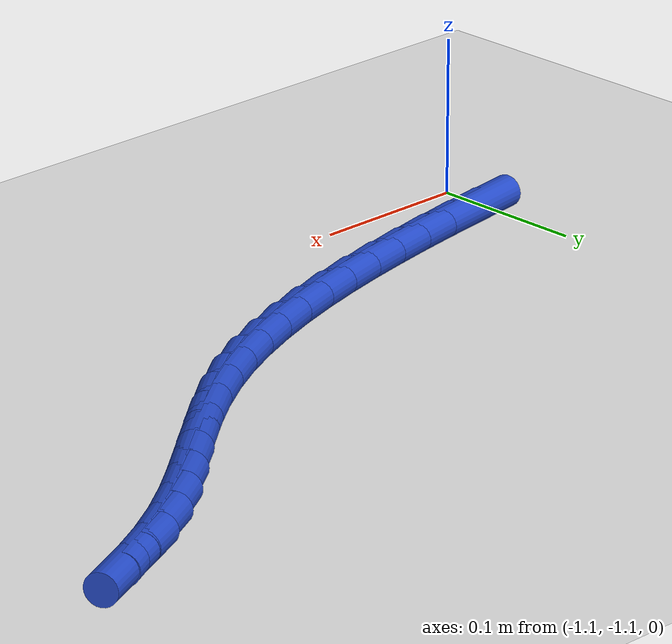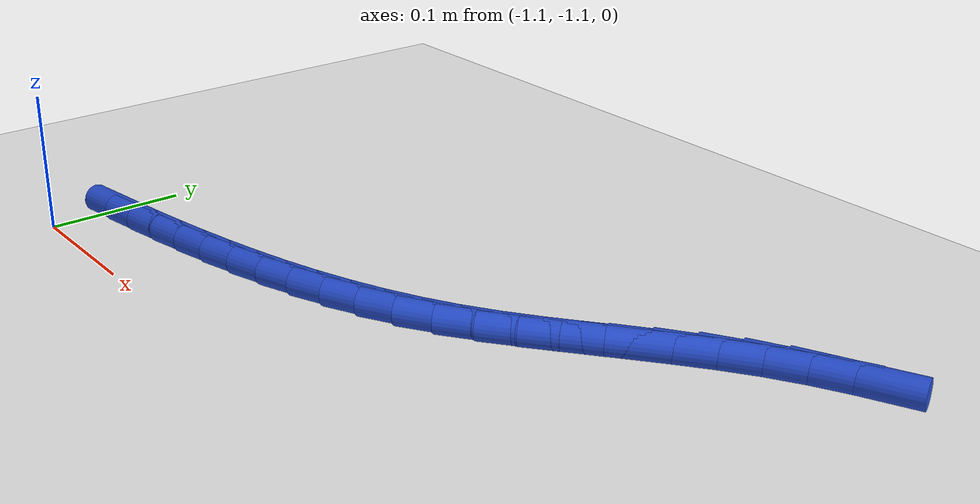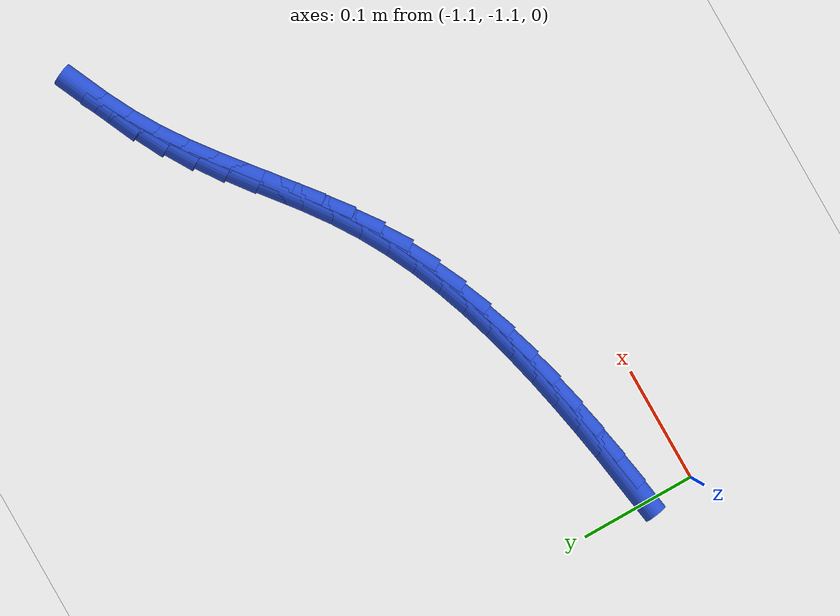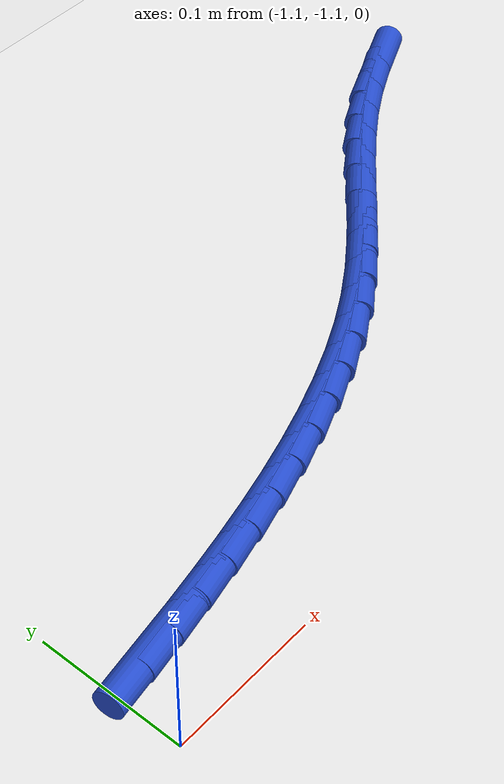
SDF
<sdf version="1.6">
 <world name="default">
  <model name="ground_plane">
   <static>1</static>
   <link name="link">
    <collision name="collision">
     <geometry><plane><normal>0 0 1</normal><size>100 100</size></plane></geometry>
     <surface><friction><ode><mu>100</mu><mu2>50</mu2></ode></friction></surface>
    </collision>
    <visual name="visual">
     <cast_shadows>0</cast_shadows>
     <geometry><plane><normal>0 0 1</normal><size>100 100</size></plane></geometry>
     <material>
      <script><uri>file://media/materials/scripts/gazebo.material</uri><name>Gazebo/WhiteGlow</name></script>
     </material>
    </visual>
   </link>
  </model>
  <model name="line">
   <link name="link_189">
    <pose>-1.0715604395295202 -1.0536346497212339 0.01 0 1.57 0.15486011500513117</pose>
    <collision name="collision">
     <geometry><cylinder><radius>0.01</radius><length>0.08</length></cylinder></geometry>
    </collision>
    <visual name="visual">
     <material>
      <script><name>Gazebo/Blue</name><uri>file://media/materials/scripts/gazebo.material</uri></script>
     </material>
     <geometry><cylinder><radius>0.01</radius><length>0.08</length></cylinder></geometry>
    </visual>
   </link>
   <link name="link_190">
    <pose>-1.0449526670208036 -1.0494809092786128 0.01 0 1.57 0.17544891113534483</pose>
    <collision name="collision">
     <geometry><cylinder><radius>0.01</radius><length>0.08</length></cylinder></geometry>
    </collision>
    <visual name="visual">
     <material>
      <script><name>Gazebo/Blue</name><uri>file://media/materials/scripts/gazebo.material</uri></script>
     </material>
     <geometry><cylinder><radius>0.01</radius><length>0.08</length></cylinder></geometry>
    </visual>
   </link>
   <link name="link_191">
    <pose>-1.018354942798299 -1.0447658881870363 0.01 0 1.57 0.19378828539661466</pose>
    <collision name="collision">
     <geometry><cylinder><radius>0.01</radius><length>0.08</length></cylinder></geometry>
    </collision>
    <visual name="visual">
     <material>
      <script><name>Gazebo/Blue</name><uri>file://media/materials/scripts/gazebo.material</uri></script>
     </material>
     <geometry><cylinder><radius>0.01</radius><length>0.08</length></cylinder></geometry>
    </visual>
   </link>
   <link name="link_192">
    <pose>-0.9917712558513961 -1.0395488097714596 0.01 0 1.57 0.21437530286817308</pose>
    <collision name="collision">
     <geometry><cylinder><radius>0.01</radius><length>0.08</length></cylinder></geometry>
    </collision>
    <visual name="visual">
     <material>
      <script><name>Gazebo/Blue</name><uri>file://media/materials/scripts/gazebo.material</uri></script>
     </material>
     <geometry><cylinder><radius>0.01</radius><length>0.08</length></cylinder></geometry>
    </visual>
   </link>
   <link name="link_193">
    <pose>-0.9652649581636099 -1.0337778370418815 0.01 0 1.57 0.2400023250507006</pose>
    <collision name="collision">
     <geometry><cylinder><radius>0.01</radius><length>0.08</length></cylinder></geometry>
    </collision>
    <visual name="visual">
     <material>
      <script><name>Gazebo/Blue</name><uri>file://media/materials/scripts/gazebo.material</uri></script>
     </material>
     <geometry><cylinder><radius>0.01</radius><length>0.08</length></cylinder></geometry>
    </visual>
   </link>
   <link name="link_194">
    <pose>-0.9389350669867899 -1.0273344080057534 0.01 0 1.57 0.27088059914250473</pose>
    <collision name="collision">
     <geometry><cylinder><radius>0.01</radius><length>0.08</length></cylinder></geometry>
    </collision>
    <visual name="visual">
     <material>
      <script><name>Gazebo/Blue</name><uri>file://media/materials/scripts/gazebo.material</uri></script>
     </material>
     <geometry><cylinder><radius>0.01</radius><length>0.08</length></cylinder></geometry>
    </visual>
   </link>
   <link name="link_195">
    <pose>-0.9128810861415104 -1.0200990503647613 0.01 0 1.57 0.3072146526912078</pose>
    <collision name="collision">
     <geometry><cylinder><radius>0.01</radius><length>0.08</length></cylinder></geometry>
    </collision>
    <visual name="visual">
     <material>
      <script><name>Gazebo/Blue</name><uri>file://media/materials/scripts/gazebo.material</uri></script>
     </material>
     <geometry><cylinder><radius>0.01</radius><length>0.08</length></cylinder></geometry>
    </visual>
   </link>
   <link name="link_196">
    <pose>-0.8872025194483462 -1.0119522918205917 0.01 0 1.57 0.3492148768662125</pose>
    <collision name="collision">
     <geometry><cylinder><radius>0.01</radius><length>0.08</length></cylinder></geometry>
    </collision>
    <visual name="visual">
     <material>
      <script><name>Gazebo/Blue</name><uri>file://media/materials/scripts/gazebo.material</uri></script>
     </material>
     <geometry><cylinder><radius>0.01</radius><length>0.08</length></cylinder></geometry>
    </visual>
   </link>
   <link name="link_197">
    <pose>-0.8619988707278716 -1.00277466007493 0.01 0 1.57 0.3970653486880831</pose>
    <collision name="collision">
     <geometry><cylinder><radius>0.01</radius><length>0.08</length></cylinder></geometry>
    </collision>
    <visual name="visual">
     <material>
      <script><name>Gazebo/Blue</name><uri>file://media/materials/scripts/gazebo.material</uri></script>
     </material>
     <geometry><cylinder><radius>0.01</radius><length>0.08</length></cylinder></geometry>
    </visual>
   </link>
   <link name="link_198">
    <pose>-0.8373696438006609 -0.9924466828294628 0.01 0 1.57 0.45088184842247314</pose>
    <collision name="collision">
     <geometry><cylinder><radius>0.01</radius><length>0.08</length></cylinder></geometry>
    </collision>
    <visual name="visual">
     <material>
      <script><name>Gazebo/Blue</name><uri>file://media/materials/scripts/gazebo.material</uri></script>
     </material>
     <geometry><cylinder><radius>0.01</radius><length>0.08</length></cylinder></geometry>
    </visual>
   </link>
   <link name="link_199">
    <pose>-0.8134143424872887 -0.9808488877858755 0.01 0 1.57 0.5106602788937123</pose>
    <collision name="collision">
     <geometry><cylinder><radius>0.01</radius><length>0.08</length></cylinder></geometry>
    </collision>
    <visual name="visual">
     <material>
      <script><name>Gazebo/Blue</name><uri>file://media/materials/scripts/gazebo.material</uri></script>
     </material>
     <geometry><cylinder><radius>0.01</radius><length>0.08</length></cylinder></geometry>
    </visual>
   </link>
   <link name="link_200">
    <pose>-0.7902324706083295 -0.9678618026458548 0.01 0 1.57 0.5754843797359663</pose>
    <collision name="collision">
     <geometry><cylinder><radius>0.01</radius><length>0.08</length></cylinder></geometry>
    </collision>
    <visual name="visual">
     <material>
      <script><name>Gazebo/Blue</name><uri>file://media/materials/scripts/gazebo.material</uri></script>
     </material>
     <geometry><cylinder><radius>0.01</radius><length>0.08</length></cylinder></geometry>
    </visual>
   </link>
   <link name="link_201">
    <pose>-0.7679131694395223 -0.9533825240153715 0.01 0 1.57 0.6315643651440583</pose>
    <collision name="collision">
     <geometry><cylinder><radius>0.01</radius><length>0.08</length></cylinder></geometry>
    </collision>
    <visual name="visual">
     <material>
      <script><name>Gazebo/Blue</name><uri>file://media/materials/scripts/gazebo.material</uri></script>
     </material>
     <geometry><cylinder><radius>0.01</radius><length>0.08</length></cylinder></geometry>
    </visual>
   </link>
   <link name="link_202">
    <pose>-0.7463551882348538 -0.9376125705545625 0.01 0 1.57 0.6671711358471635</pose>
    <collision name="collision">
     <geometry><cylinder><radius>0.01</radius><length>0.08</length></cylinder></geometry>
    </collision>
    <visual name="visual">
     <material>
      <script><name>Gazebo/Blue</name><uri>file://media/materials/scripts/gazebo.material</uri></script>
     </material>
     <geometry><cylinder><radius>0.01</radius><length>0.08</length></cylinder></geometry>
    </visual>
   </link>
   <link name="link_203">
    <pose>-0.7252902340131578 -0.9210205484826417 0.01 0 1.57 0.6822916686413547</pose>
    <collision name="collision">
     <geometry><cylinder><radius>0.01</radius><length>0.08</length></cylinder></geometry>
    </collision>
    <visual name="visual">
     <material>
      <script><name>Gazebo/Blue</name><uri>file://media/materials/scripts/gazebo.material</uri></script>
     </material>
     <geometry><cylinder><radius>0.01</radius><length>0.08</length></cylinder></geometry>
    </visual>
   </link>
   <link name="link_204">
    <pose>-0.7044443462806969 -0.9040841259312034 0.01 0 1.57 0.6771440117403015</pose>
    <collision name="collision">
     <geometry><cylinder><radius>0.01</radius><length>0.08</length></cylinder></geometry>
    </collision>
    <visual name="visual">
     <material>
      <script><name>Gazebo/Blue</name><uri>file://media/materials/scripts/gazebo.material</uri></script>
     </material>
     <geometry><cylinder><radius>0.01</radius><length>0.08</length></cylinder></geometry>
    </visual>
   </link>
   <link name="link_205">
    <pose>-0.6835435645437324 -0.8872809710318421 0.01 0 1.57 0.651590869169058</pose>
    <collision name="collision">
     <geometry><cylinder><radius>0.01</radius><length>0.08</length></cylinder></geometry>
    </collision>
    <visual name="visual">
     <material>
      <script><name>Gazebo/Blue</name><uri>file://media/materials/scripts/gazebo.material</uri></script>
     </material>
     <geometry><cylinder><radius>0.01</radius><length>0.08</length></cylinder></geometry>
    </visual>
   </link>
   <link name="link_206">
    <pose>-0.662313928308527 -0.871088751916152 0.01 0 1.57 0.6051990723916031</pose>
    <collision name="collision">
     <geometry><cylinder><radius>0.01</radius><length>0.08</length></cylinder></geometry>
    </collision>
    <visual name="visual">
     <material>
      <script><name>Gazebo/Blue</name><uri>file://media/materials/scripts/gazebo.material</uri></script>
     </material>
     <geometry><cylinder><radius>0.01</radius><length>0.08</length></cylinder></geometry>
    </visual>
   </link>
   <link name="link_207">
    <pose>-0.6404814770813427 -0.8559851367157275 0.01 0 1.57 0.5400072456348773</pose>
    <collision name="collision">
     <geometry><cylinder><radius>0.01</radius><length>0.08</length></cylinder></geometry>
    </collision>
    <visual name="visual">
     <material>
      <script><name>Gazebo/Blue</name><uri>file://media/materials/scripts/gazebo.material</uri></script>
     </material>
     <geometry><cylinder><radius>0.01</radius><length>0.08</length></cylinder></geometry>
    </visual>
   </link>
   <link name="link_208">
    <pose>-0.6178035877145986 -0.8423911146805818 0.01 0 1.57 0.47720955593476216</pose>
    <collision name="collision">
     <geometry><cylinder><radius>0.01</radius><length>0.08</length></cylinder></geometry>
    </collision>
    <visual name="visual">
     <material>
      <script><name>Gazebo/Blue</name><uri>file://media/materials/scripts/gazebo.material</uri></script>
     </material>
     <geometry><cylinder><radius>0.01</radius><length>0.08</length></cylinder></geometry>
    </visual>
   </link>
   <link name="link_209">
    <pose>-0.594306455850721 -0.8302414708911311 0.01 0 1.57 0.42796541755819106</pose>
    <collision name="collision">
     <geometry><cylinder><radius>0.01</radius><length>0.08</length></cylinder></geometry>
    </collision>
    <visual name="visual">
     <material>
      <script><name>Gazebo/Blue</name><uri>file://media/materials/scripts/gazebo.material</uri></script>
     </material>
     <geometry><cylinder><radius>0.01</radius><length>0.08</length></cylinder></geometry>
    </visual>
   </link>
  </model>
 </world>
</sdf>
